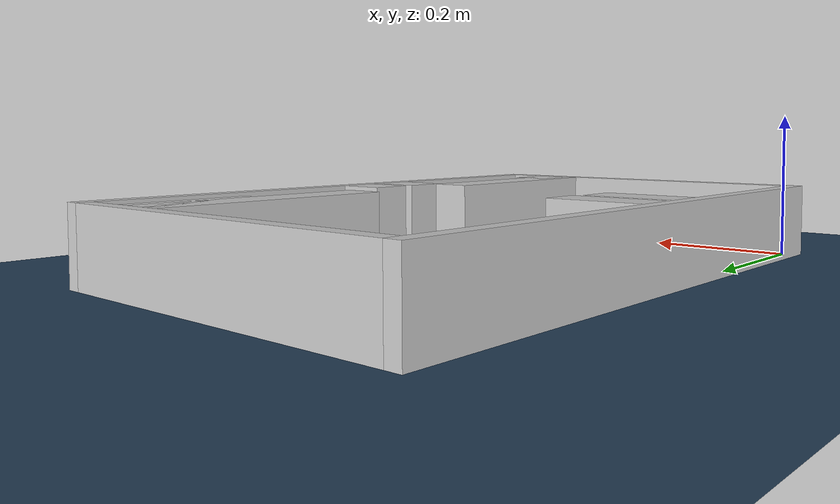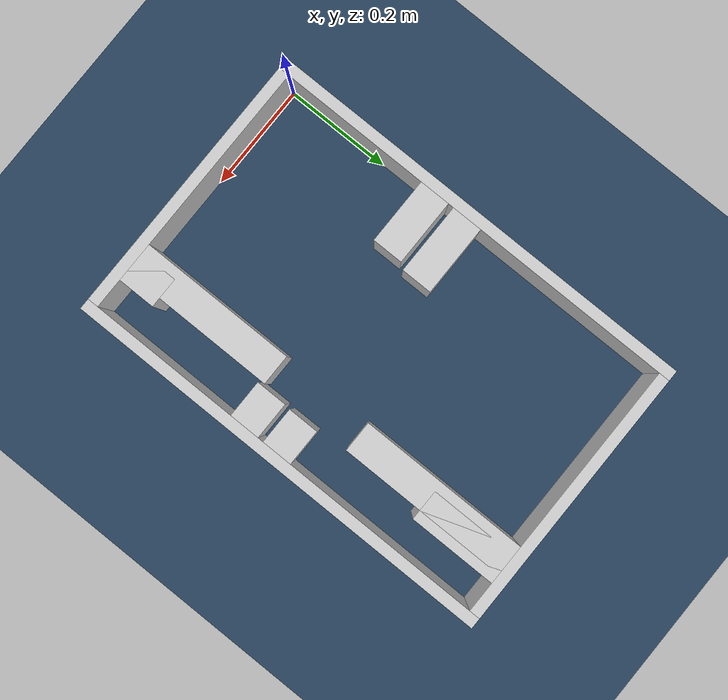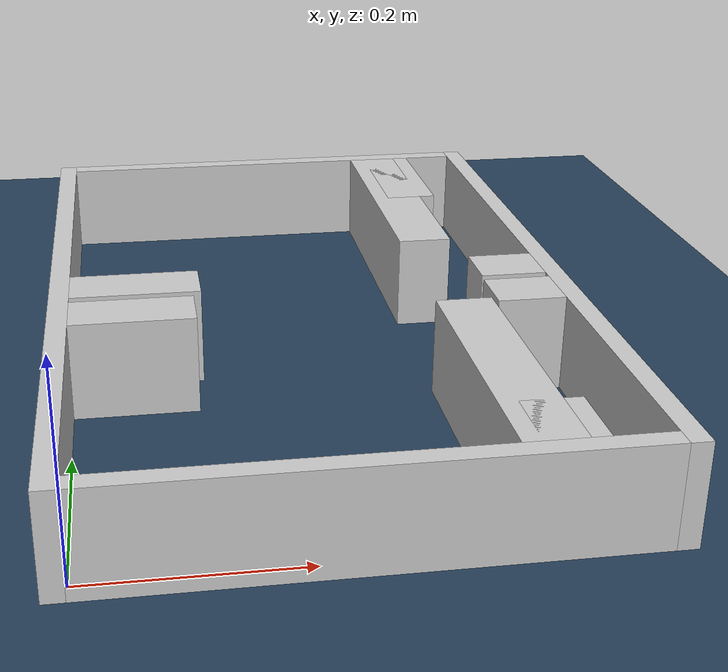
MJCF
<?xml version="1.0" ?>
<mujoco model="generated_real_template">
  <compiler angle="degree"/>
  <option timestep="0.002" integrator="implicitfast" iterations="100" cone="elliptic"/>
  <default>
    <geom density="1"/>
  </default>
  <asset>
    <texture builtin="gradient" height="3072" rgb1="0.3 0.5 0.7" rgb2="0 0 0" type="skybox" width="512"/>
    <texture builtin="checker" height="300" mark="edge" markrgb="0.8 0.8 0.8" name="groundplane" rgb1="0.2 0.3 0.4" rgb2="0.1 0.2 0.3" type="2d" width="300"/>
    <material name="groundplane" reflectance="0.2" texrepeat="5 5" texture="groundplane" texuniform="true"/>
  </asset>
  <worldbody>
    <light dir="0 0 -1" directional="true" pos="0 0 1.5"/>
    <geom name="floor" type="plane" condim="4" friction="0.5 0.005 0.001" material="groundplane" size="0 0 0.05"/>
    <body name="walls">
      <geom name="wall_boundary_left" type="box" condim="4" friction="1.0 0.005 0.0001" rgba="0.8 0.8 0.8 1" pos="-0.010000 0.387500 0.050000" euler="0 0 0.000000" size="0.010000 0.407500 0.050000"/>
      <geom name="wall_boundary_right" type="box" condim="4" friction="1.0 0.005 0.0001" rgba="0.8 0.8 0.8 1" pos="0.500000 0.387500 0.050000" euler="0 0 0.000000" size="0.010000 0.407500 0.050000"/>
      <geom name="wall_boundary_bottom" type="box" condim="4" friction="1.0 0.005 0.0001" rgba="0.8 0.8 0.8 1" pos="0.245000 -0.010000 0.050000" euler="0 0 0.000000" size="0.245000 0.010000 0.050000"/>
      <geom name="wall_boundary_top" type="box" condim="4" friction="1.0 0.005 0.0001" rgba="0.8 0.8 0.8 1" pos="0.245000 0.785000 0.050000" euler="0 0 0.000000" size="0.245000 0.010000 0.050000"/>
      <geom name="wall_inner_1_1" type="box" condim="4" friction="1.0 0.005 0.0001" rgba="0.8 0.8 0.8 1" pos="0.065813 0.375652 0.050000" euler="0 0 0.000000" size="0.065813 0.028500 0.050000"/>
      <geom name="wall_inner_1_2" type="box" condim="4" friction="1.0 0.005 0.0001" rgba="0.8 0.8 0.8 1" pos="0.456106 0.375652 0.050000" euler="0 0 0.000000" size="0.033894 0.028500 0.050000"/>
      <geom name="wall_inner_2_1" type="box" condim="4" friction="1.0 0.005 0.0001" rgba="0.8 0.8 0.8 1" pos="0.405398 0.034513 0.050000" euler="0 0 90.000000" size="0.034513 0.028500 0.050000"/>
      <geom name="wall_inner_2_2" type="box" condim="4" friction="1.0 0.005 0.0001" rgba="0.8 0.8 0.8 1" pos="0.405398 0.693730 0.050000" euler="0 0 90.000000" size="0.081270 0.028500 0.050000"/>
      <geom name="wall_inner_3_1" type="box" condim="4" friction="1.0 0.005 0.0001" rgba="0.8 0.8 0.8 1" pos="0.387634 0.144833 0.050000" euler="0 0 90.000000" size="0.144833 0.028500 0.050000"/>
      <geom name="wall_inner_3_2" type="box" condim="4" friction="1.0 0.005 0.0001" rgba="0.8 0.8 0.8 1" pos="0.387634 0.617379 0.050000" euler="0 0 90.000000" size="0.157621 0.028500 0.050000"/>
      <geom name="wall_inner_4_1" type="box" condim="4" friction="1.0 0.005 0.0001" rgba="0.8 0.8 0.8 1" pos="0.061597 0.308109 0.050000" euler="0 0 0.000000" size="0.061597 0.028500 0.050000"/>
      <geom name="wall_inner_4_2" type="box" condim="4" friction="1.0 0.005 0.0001" rgba="0.8 0.8 0.8 1" pos="0.455345 0.308109 0.050000" euler="0 0 0.000000" size="0.034655 0.028500 0.050000"/>
    </body>
  </worldbody>
</mujoco>
